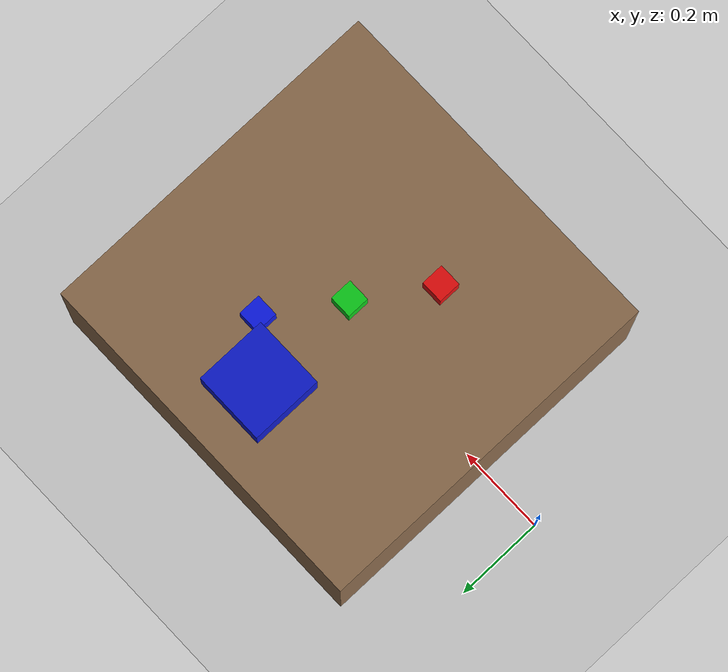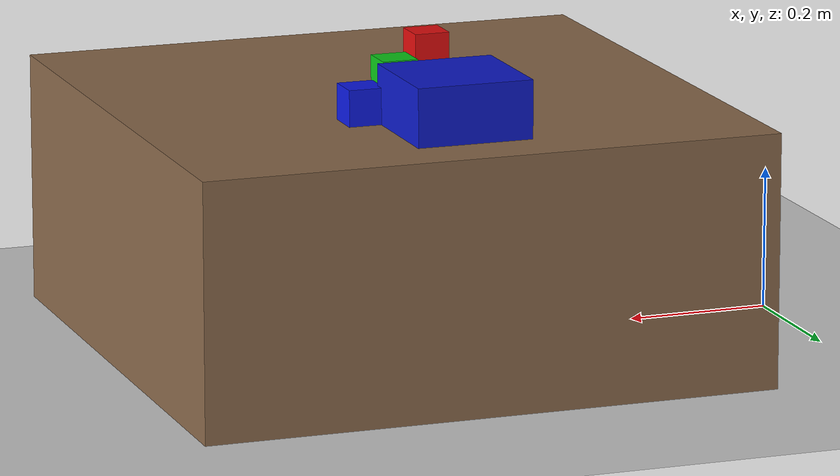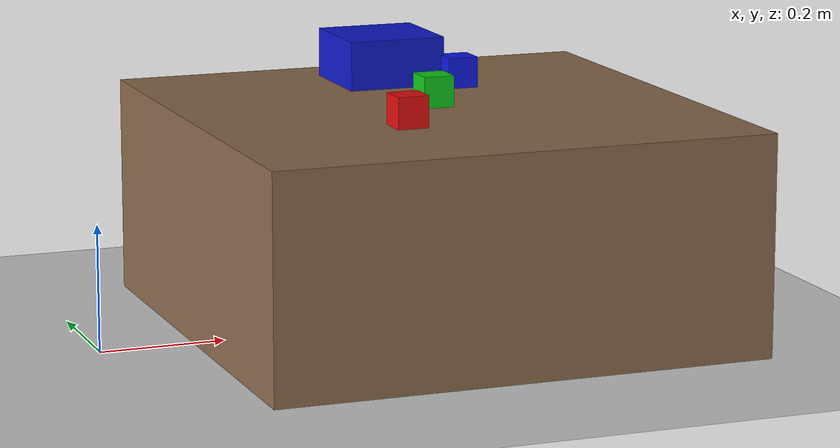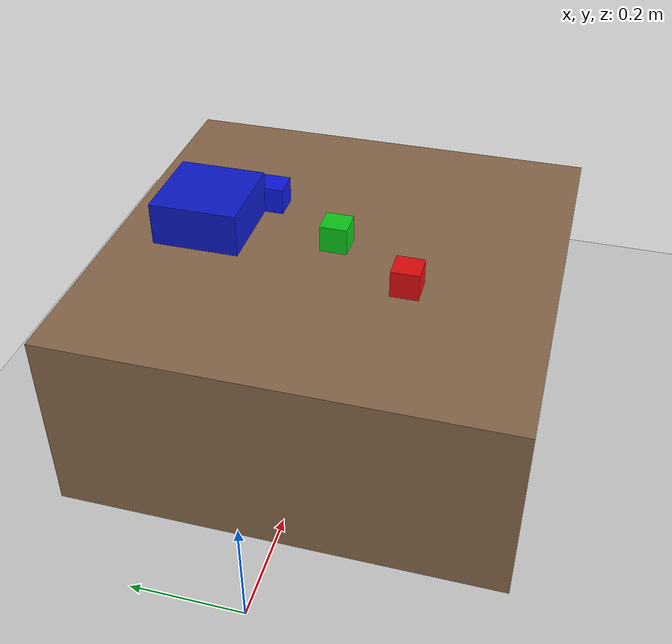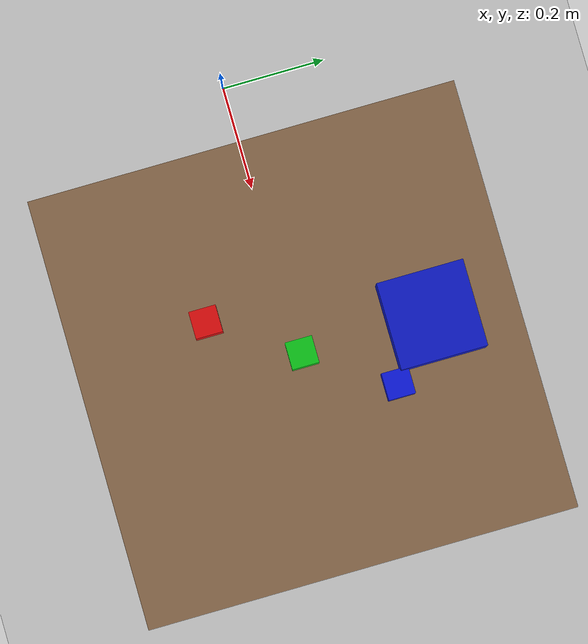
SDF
<?xml version="1.0" ?>
<sdf version="1.6">
  <world name="panda_table">
    <include>
      <uri>model://sun</uri>
    </include>
    <include>
      <uri>model://ground_plane</uri>
    </include>

    <physics type="ode">
      <max_step_size>0.001</max_step_size>
      <real_time_factor>1.0</real_time_factor>
      <real_time_update_rate>1000</real_time_update_rate>
    </physics>

    <model name="table">
      <static>true</static>
      <pose>0.55 0 0.175 0 0 0</pose>
      <link name="link">
        <collision name="collision">
          <geometry>
            <box>
              <size>0.80 0.80 0.35</size>
            </box>
          </geometry>
        </collision>
        <visual name="visual">
          <geometry>
            <box>
              <size>0.80 0.80 0.35</size>
            </box>
          </geometry>
          <material>
            <ambient>0.45 0.35 0.25 1</ambient>
            <diffuse>0.55 0.42 0.30 1</diffuse>
          </material>
        </visual>
      </link>
    </model>

    <model name="red_cube">
      <pose>0.45 -0.15 0.375 0 0 0</pose>
      <link name="link">
        <collision name="collision">
          <geometry>
            <box><size>0.05 0.05 0.05</size></box>
          </geometry>
        </collision>
        <visual name="visual">
          <geometry>
            <box><size>0.05 0.05 0.05</size></box>
          </geometry>
          <material>
            <ambient>0.8 0.05 0.05 1</ambient>
            <diffuse>0.9 0.05 0.05 1</diffuse>
          </material>
        </visual>
      </link>
    </model>

    <model name="green_cube">
      <pose>0.55 0.00 0.375 0 0 0</pose>
      <link name="link">
        <collision name="collision">
          <geometry>
            <box><size>0.05 0.05 0.05</size></box>
          </geometry>
        </collision>
        <visual name="visual">
          <geometry>
            <box><size>0.05 0.05 0.05</size></box>
          </geometry>
          <material>
            <ambient>0.05 0.7 0.10 1</ambient>
            <diffuse>0.05 0.8 0.10 1</diffuse>
          </material>
        </visual>
      </link>
    </model>

    <model name="blue_cube">
      <pose>0.65 0.15 0.375 0 0 0</pose>
      <link name="link">
        <collision name="collision">
          <geometry>
            <box><size>0.05 0.05 0.05</size></box>
          </geometry>
        </collision>
        <visual name="visual">
          <geometry>
            <box><size>0.05 0.05 0.05</size></box>
          </geometry>
          <material>
            <ambient>0.05 0.10 0.8 1</ambient>
            <diffuse>0.05 0.10 0.9 1</diffuse>
          </material>
        </visual>
      </link>
    </model>

    <model name="blue_box">
      <static>true</static>
      <pose>0.55 0.24 0.38 0 0 0</pose>
      <link name="link">
        <collision name="collision">
          <geometry>
            <box><size>0.16 0.16 0.10</size></box>
          </geometry>
        </collision>
        <visual name="visual">
          <geometry>
            <box><size>0.16 0.16 0.10</size></box>
          </geometry>
          <material>
            <ambient>0.05 0.10 0.7 1</ambient>
            <diffuse>0.05 0.10 0.8 1</diffuse>
          </material>
        </visual>
      </link>
    </model>

    <!-- 固定俯视 RGB-D 相机 -->
    <model name="overhead_camera">
      <static>true</static>
      <pose>0.55 0 1.15 0 1.5708 0</pose>
      <link name="camera_link">
        <sensor name="camera" type="depth">
          <always_on>true</always_on>
          <update_rate>15</update_rate>
          <camera name="camera">
            <horizontal_fov>1.047198</horizontal_fov>
            <image>
              <width>320</width>
              <height>240</height>
              <format>R8G8B8</format>
            </image>
            <clip>
              <near>0.05</near>
              <far>3.0</far>
            </clip>
          </camera>
          <plugin name="camera_controller" filename="libgazebo_ros_camera.so">
            <camera_name>camera</camera_name>
            <frame_name>camera_optical_frame</frame_name>
            <min_depth>0.05</min_depth>
            <max_depth>3.0</max_depth>
            <remapping>camera/image_raw:=/camera/image_raw</remapping>
            <remapping>camera/image_depth:=/camera/depth/image_raw</remapping>
            <remapping>camera/camera_info:=/camera/camera_info</remapping>
            <remapping>camera/camera_info_depth:=/camera/depth/camera_info</remapping>
            <remapping>camera/points:=/camera/points</remapping>
          </plugin>
        </sensor>
      </link>
    </model>
  </world>
</sdf>
